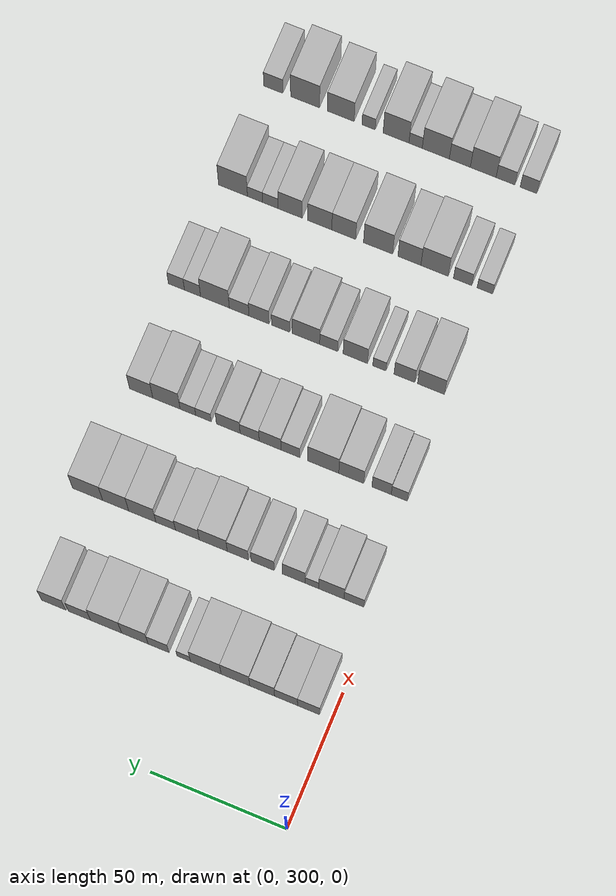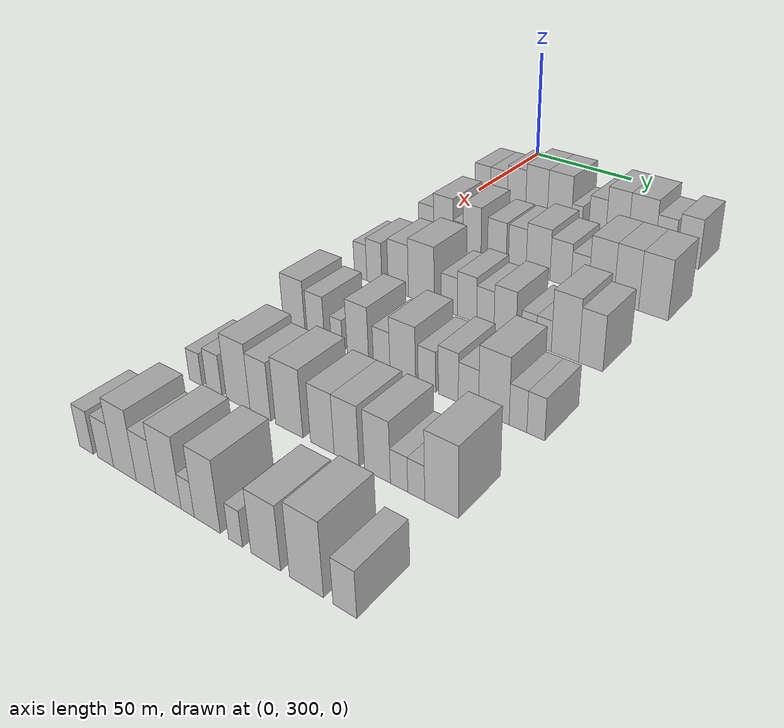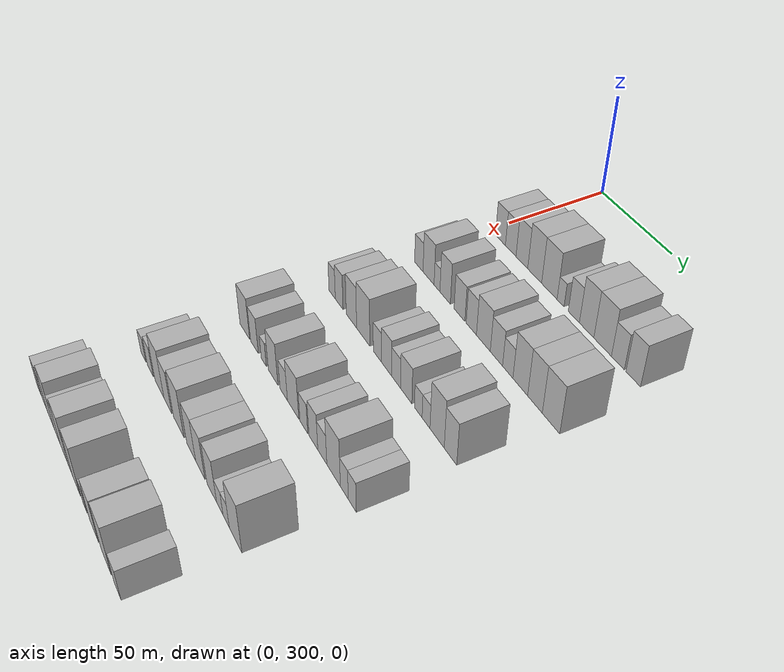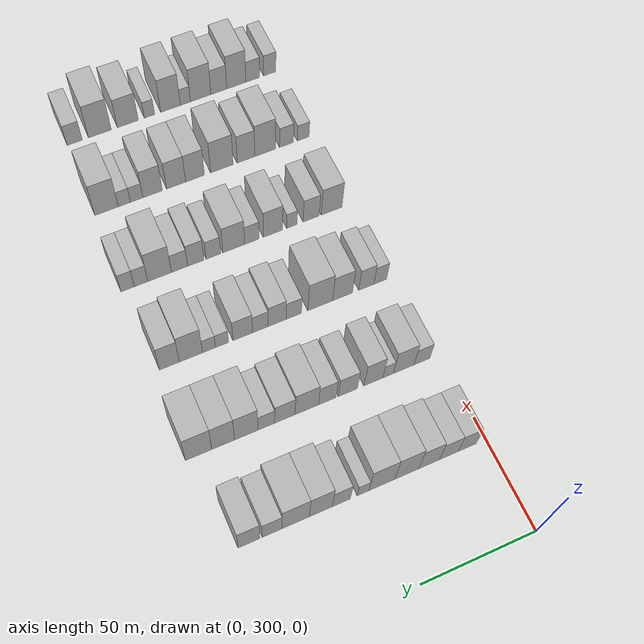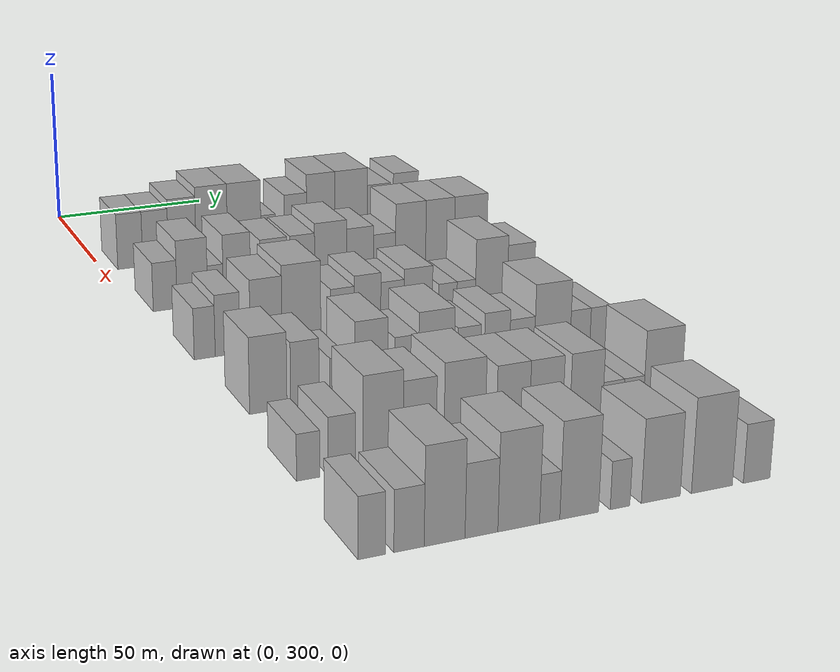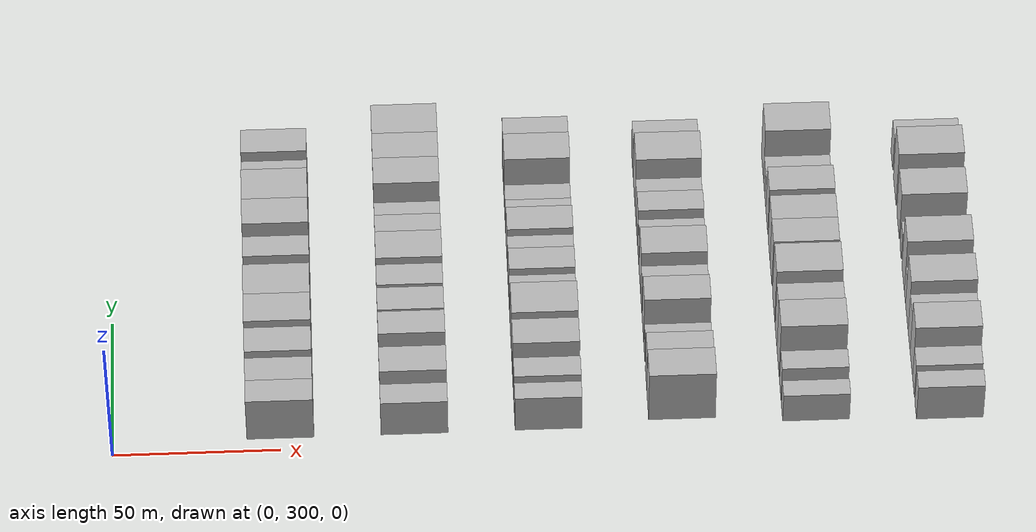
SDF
<sdf version="1.6">
 <world name="default">
  <model name="building_104">
   <static>1</static>
   <pose>50.0000 308.5987 0 0.000000 0.000000 0.000000</pose>
   <link name="link">
    <pose>0 0 9.00 0 0 0</pose>
    <collision name="collision"><geometry><box><size>20.0000 8.1256 18.0000</size></box></geometry></collision>
    <visual name="visual">
     <cast_shadows>0</cast_shadows>
     <geometry><box><size>20.0000 8.1256 18.0000</size></box></geometry>
     <material>
      <script>
       <uri>model://HANNAS_wall/materials/scripts</uri>
       <uri>model://HANNAS_wall/materials/textures</uri>
       <name>vrc/HANNAS_wall</name>
      </script>
     </material>
    </visual>
   </link>
  </model>
  <model name="building_105">
   <static>1</static>
   <pose>50.0000 316.8879 0 0.000000 0.000000 0.000000</pose>
   <link name="link">
    <pose>0 0 9.00 0 0 0</pose>
    <collision name="collision"><geometry><box><size>20.0000 8.4529 18.0000</size></box></geometry></collision>
    <visual name="visual">
     <cast_shadows>0</cast_shadows>
     <geometry><box><size>20.0000 8.4529 18.0000</size></box></geometry>
     <material>
      <script>
       <uri>model://HANNAS_wall/materials/scripts</uri>
       <uri>model://HANNAS_wall/materials/textures</uri>
       <name>vrc/HANNAS_wall</name>
      </script>
     </material>
    </visual>
   </link>
  </model>
  <model name="building_106">
   <static>1</static>
   <pose>50.0000 325.6875 0 0.000000 0.000000 0.000000</pose>
   <link name="link">
    <pose>0 0 10.50 0 0 0</pose>
    <collision name="collision"><geometry><box><size>20.0000 9.1463 21.0000</size></box></geometry></collision>
    <visual name="visual">
     <cast_shadows>0</cast_shadows>
     <geometry><box><size>20.0000 9.1463 21.0000</size></box></geometry>
     <material>
      <script>
       <uri>model://HANNAS_wall/materials/scripts</uri>
       <uri>model://HANNAS_wall/materials/textures</uri>
       <name>vrc/HANNAS_wall</name>
      </script>
     </material>
    </visual>
   </link>
  </model>
  <model name="building_107">
   <static>1</static>
   <pose>50.0000 335.5352 0 0.000000 0.000000 0.000000</pose>
   <link name="link">
    <pose>0 0 12.00 0 0 0</pose>
    <collision name="collision"><geometry><box><size>20.0000 10.5491 24.0000</size></box></geometry></collision>
    <visual name="visual">
     <cast_shadows>0</cast_shadows>
     <geometry><box><size>20.0000 10.5491 24.0000</size></box></geometry>
     <material>
      <script>
       <uri>model://HANNAS_wall/materials/scripts</uri>
       <uri>model://HANNAS_wall/materials/textures</uri>
       <name>vrc/HANNAS_wall</name>
      </script>
     </material>
    </visual>
   </link>
  </model>
  <model name="building_108">
   <static>1</static>
   <pose>50.0000 346.4816 0 0.000000 0.000000 0.000000</pose>
   <link name="link">
    <pose>0 0 12.00 0 0 0</pose>
    <collision name="collision"><geometry><box><size>20.0000 11.3436 24.0000</size></box></geometry></collision>
    <visual name="visual">
     <cast_shadows>0</cast_shadows>
     <geometry><box><size>20.0000 11.3436 24.0000</size></box></geometry>
     <material>
      <script>
       <uri>model://HANNAS_wall/materials/scripts</uri>
       <uri>model://HANNAS_wall/materials/textures</uri>
       <name>vrc/HANNAS_wall</name>
      </script>
     </material>
    </visual>
   </link>
  </model>
  <model name="building_109">
   <static>1</static>
   <pose>50.0000 354.6487 0 0.000000 0.000000 0.000000</pose>
   <link name="link">
    <pose>0 0 6.00 0 0 0</pose>
    <collision name="collision"><geometry><box><size>20.0000 4.9905 12.0000</size></box></geometry></collision>
    <visual name="visual">
     <cast_shadows>0</cast_shadows>
     <geometry><box><size>20.0000 4.9905 12.0000</size></box></geometry>
     <material>
      <script>
       <uri>model://HANNAS_wall/materials/scripts</uri>
       <uri>model://HANNAS_wall/materials/textures</uri>
       <name>vrc/HANNAS_wall</name>
      </script>
     </material>
    </visual>
   </link>
  </model>
  <model name="building_110">
   <static>1</static>
   <pose>50.0000 364.0141 0 0.000000 0.000000 0.000000</pose>
   <link name="link">
    <pose>0 0 9.00 0 0 0</pose>
    <collision name="collision"><geometry><box><size>20.0000 7.7405 18.0000</size></box></geometry></collision>
    <visual name="visual">
     <cast_shadows>0</cast_shadows>
     <geometry><box><size>20.0000 7.7405 18.0000</size></box></geometry>
     <material>
      <script>
       <uri>model://HANNAS_wall/materials/scripts</uri>
       <uri>model://HANNAS_wall/materials/textures</uri>
       <name>vrc/HANNAS_wall</name>
      </script>
     </material>
    </visual>
   </link>
  </model>
  <model name="building_111">
   <static>1</static>
   <pose>50.0000 372.7975 0 0.000000 0.000000 0.000000</pose>
   <link name="link">
    <pose>0 0 12.00 0 0 0</pose>
    <collision name="collision"><geometry><box><size>20.0000 9.8262 24.0000</size></box></geometry></collision>
    <visual name="visual">
     <cast_shadows>0</cast_shadows>
     <geometry><box><size>20.0000 9.8262 24.0000</size></box></geometry>
     <material>
      <script>
       <uri>model://HANNAS_wall/materials/scripts</uri>
       <uri>model://HANNAS_wall/materials/textures</uri>
       <name>vrc/HANNAS_wall</name>
      </script>
     </material>
    </visual>
   </link>
  </model>
  <model name="building_112">
   <static>1</static>
   <pose>50.0000 383.4987 0 0.000000 0.000000 0.000000</pose>
   <link name="link">
    <pose>0 0 12.00 0 0 0</pose>
    <collision name="collision"><geometry><box><size>20.0000 11.5763 24.0000</size></box></geometry></collision>
    <visual name="visual">
     <cast_shadows>0</cast_shadows>
     <geometry><box><size>20.0000 11.5763 24.0000</size></box></geometry>
     <material>
      <script>
       <uri>model://HANNAS_wall/materials/scripts</uri>
       <uri>model://HANNAS_wall/materials/textures</uri>
       <name>vrc/HANNAS_wall</name>
      </script>
     </material>
    </visual>
   </link>
  </model>
  <model name="building_113">
   <static>1</static>
   <pose>50.0000 393.4003 0 0.000000 0.000000 0.000000</pose>
   <link name="link">
    <pose>0 0 9.00 0 0 0</pose>
    <collision name="collision"><geometry><box><size>20.0000 8.2269 18.0000</size></box></geometry></collision>
    <visual name="visual">
     <cast_shadows>0</cast_shadows>
     <geometry><box><size>20.0000 8.2269 18.0000</size></box></geometry>
     <material>
      <script>
       <uri>model://HANNAS_wall/materials/scripts</uri>
       <uri>model://HANNAS_wall/materials/textures</uri>
       <name>vrc/HANNAS_wall</name>
      </script>
     </material>
    </visual>
   </link>
  </model>
  <model name="building_114">
   <static>1</static>
   <pose>50.0000 403.0315 0 0.000000 0.000000 0.000000</pose>
   <link name="link">
    <pose>0 0 10.50 0 0 0</pose>
    <collision name="collision"><geometry><box><size>20.0000 9.0353 21.0000</size></box></geometry></collision>
    <visual name="visual">
     <cast_shadows>0</cast_shadows>
     <geometry><box><size>20.0000 9.0353 21.0000</size></box></geometry>
     <material>
      <script>
       <uri>model://HANNAS_wall/materials/scripts</uri>
       <uri>model://HANNAS_wall/materials/textures</uri>
       <name>vrc/HANNAS_wall</name>
      </script>
     </material>
    </visual>
   </link>
  </model>
  <model name="building_231">
   <static>1</static>
   <pose>90.0000 308.2736 0 0.000000 0.000000 0.000000</pose>
   <link name="link">
    <pose>0 0 7.50 0 0 0</pose>
    <collision name="collision"><geometry><box><size>20.0000 7.3513 15.0000</size></box></geometry></collision>
    <visual name="visual">
     <cast_shadows>0</cast_shadows>
     <geometry><box><size>20.0000 7.3513 15.0000</size></box></geometry>
     <material>
      <script>
       <uri>model://HANNAS_wall/materials/scripts</uri>
       <uri>model://HANNAS_wall/materials/textures</uri>
       <name>vrc/HANNAS_wall</name>
      </script>
     </material>
    </visual>
   </link>
  </model>
  <model name="building_232">
   <static>1</static>
   <pose>90.0000 316.6652 0 0.000000 0.000000 0.000000</pose>
   <link name="link">
    <pose>0 0 10.50 0 0 0</pose>
    <collision name="collision"><geometry><box><size>20.0000 9.4318 21.0000</size></box></geometry></collision>
    <visual name="visual">
     <cast_shadows>0</cast_shadows>
     <geometry><box><size>20.0000 9.4318 21.0000</size></box></geometry>
     <material>
      <script>
       <uri>model://HANNAS_wall/materials/scripts</uri>
       <uri>model://HANNAS_wall/materials/textures</uri>
       <name>vrc/HANNAS_wall</name>
      </script>
     </material>
    </visual>
   </link>
  </model>
  <model name="building_233">
   <static>1</static>
   <pose>90.0000 323.8311 0 0.000000 0.000000 0.000000</pose>
   <link name="link">
    <pose>0 0 6.00 0 0 0</pose>
    <collision name="collision"><geometry><box><size>20.0000 4.8999 12.0000</size></box></geometry></collision>
    <visual name="visual">
     <cast_shadows>0</cast_shadows>
     <geometry><box><size>20.0000 4.8999 12.0000</size></box></geometry>
     <material>
      <script>
       <uri>model://HANNAS_wall/materials/scripts</uri>
       <uri>model://HANNAS_wall/materials/textures</uri>
       <name>vrc/HANNAS_wall</name>
      </script>
     </material>
    </visual>
   </link>
  </model>
  <model name="building_234">
   <static>1</static>
   <pose>90.0000 330.5690 0 0.000000 0.000000 0.000000</pose>
   <link name="link">
    <pose>0 0 10.50 0 0 0</pose>
    <collision name="collision"><geometry><box><size>20.0000 8.5759 21.0000</size></box></geometry></collision>
    <visual name="visual">
     <cast_shadows>0</cast_shadows>
     <geometry><box><size>20.0000 8.5759 21.0000</size></box></geometry>
     <material>
      <script>
       <uri>model://HANNAS_wall/materials/scripts</uri>
       <uri>model://HANNAS_wall/materials/textures</uri>
       <name>vrc/HANNAS_wall</name>
      </script>
     </material>
    </visual>
   </link>
  </model>
  <model name="building_235">
   <static>1</static>
   <pose>90.0000 342.1616 0 0.000000 0.000000 0.000000</pose>
   <link name="link">
    <pose>0 0 9.00 0 0 0</pose>
    <collision name="collision"><geometry><box><size>20.0000 8.6093 18.0000</size></box></geometry></collision>
    <visual name="visual">
     <cast_shadows>0</cast_shadows>
     <geometry><box><size>20.0000 8.6093 18.0000</size></box></geometry>
     <material>
      <script>
       <uri>model://HANNAS_wall/materials/scripts</uri>
       <uri>model://HANNAS_wall/materials/textures</uri>
       <name>vrc/HANNAS_wall</name>
      </script>
     </material>
    </visual>
   </link>
  </model>
  <model name="building_236">
   <static>1</static>
   <pose>90.0000 351.4237 0 0.000000 0.000000 0.000000</pose>
   <link name="link">
    <pose>0 0 9.00 0 0 0</pose>
    <collision name="collision"><geometry><box><size>20.0000 7.9150 18.0000</size></box></geometry></collision>
    <visual name="visual">
     <cast_shadows>0</cast_shadows>
     <geometry><box><size>20.0000 7.9150 18.0000</size></box></geometry>
     <material>
      <script>
       <uri>model://HANNAS_wall/materials/scripts</uri>
       <uri>model://HANNAS_wall/materials/textures</uri>
       <name>vrc/HANNAS_wall</name>
      </script>
     </material>
    </visual>
   </link>
  </model>
  <model name="building_237">
   <static>1</static>
   <pose>90.0000 360.5863 0 0.000000 0.000000 0.000000</pose>
   <link name="link">
    <pose>0 0 10.50 0 0 0</pose>
    <collision name="collision"><geometry><box><size>20.0000 10.4103 21.0000</size></box></geometry></collision>
    <visual name="visual">
     <cast_shadows>0</cast_shadows>
     <geometry><box><size>20.0000 10.4103 21.0000</size></box></geometry>
     <material>
      <script>
       <uri>model://HANNAS_wall/materials/scripts</uri>
       <uri>model://HANNAS_wall/materials/textures</uri>
       <name>vrc/HANNAS_wall</name>
      </script>
     </material>
    </visual>
   </link>
  </model>
  <model name="building_238">
   <static>1</static>
   <pose>90.0000 370.2653 0 0.000000 0.000000 0.000000</pose>
   <link name="link">
    <pose>0 0 9.00 0 0 0</pose>
    <collision name="collision"><geometry><box><size>20.0000 8.9477 18.0000</size></box></geometry></collision>
    <visual name="visual">
     <cast_shadows>0</cast_shadows>
     <geometry><box><size>20.0000 8.9477 18.0000</size></box></geometry>
     <material>
      <script>
       <uri>model://HANNAS_wall/materials/scripts</uri>
       <uri>model://HANNAS_wall/materials/textures</uri>
       <name>vrc/HANNAS_wall</name>
      </script>
     </material>
    </visual>
   </link>
  </model>
  <model name="building_239">
   <static>1</static>
   <pose>90.0000 378.3979 0 0.000000 0.000000 0.000000</pose>
   <link name="link">
    <pose>0 0 7.50 0 0 0</pose>
    <collision name="collision"><geometry><box><size>20.0000 7.3175 15.0000</size></box></geometry></collision>
    <visual name="visual">
     <cast_shadows>0</cast_shadows>
     <geometry><box><size>20.0000 7.3175 15.0000</size></box></geometry>
     <material>
      <script>
       <uri>model://HANNAS_wall/materials/scripts</uri>
       <uri>model://HANNAS_wall/materials/textures</uri>
       <name>vrc/HANNAS_wall</name>
      </script>
     </material>
    </visual>
   </link>
  </model>
  <model name="building_240">
   <static>1</static>
   <pose>90.0000 387.1533 0 0.000000 0.000000 0.000000</pose>
   <link name="link">
    <pose>0 0 12.00 0 0 0</pose>
    <collision name="collision"><geometry><box><size>20.0000 10.1931 24.0000</size></box></geometry></collision>
    <visual name="visual">
     <cast_shadows>0</cast_shadows>
     <geometry><box><size>20.0000 10.1931 24.0000</size></box></geometry>
     <material>
      <script>
       <uri>model://HANNAS_wall/materials/scripts</uri>
       <uri>model://HANNAS_wall/materials/textures</uri>
       <name>vrc/HANNAS_wall</name>
      </script>
     </material>
    </visual>
   </link>
  </model>
  <model name="building_241">
   <static>1</static>
   <pose>90.0000 397.1457 0 0.000000 0.000000 0.000000</pose>
   <link name="link">
    <pose>0 0 12.00 0 0 0</pose>
    <collision name="collision"><geometry><box><size>20.0000 9.7918 24.0000</size></box></geometry></collision>
    <visual name="visual">
     <cast_shadows>0</cast_shadows>
     <geometry><box><size>20.0000 9.7918 24.0000</size></box></geometry>
     <material>
      <script>
       <uri>model://HANNAS_wall/materials/scripts</uri>
       <uri>model://HANNAS_wall/materials/textures</uri>
       <name>vrc/HANNAS_wall</name>
      </script>
     </material>
    </visual>
   </link>
  </model>
  <model name="building_242">
   <static>1</static>
   <pose>90.0000 407.6900 0 0.000000 0.000000 0.000000</pose>
   <link name="link">
    <pose>0 0 12.00 0 0 0</pose>
    <collision name="collision"><geometry><box><size>20.0000 11.2967 24.0000</size></box></geometry></collision>
    <visual name="visual">
     <cast_shadows>0</cast_shadows>
     <geometry><box><size>20.0000 11.2967 24.0000</size></box></geometry>
     <material>
      <script>
       <uri>model://HANNAS_wall/materials/scripts</uri>
       <uri>model://HANNAS_wall/materials/textures</uri>
       <name>vrc/HANNAS_wall</name>
      </script>
     </material>
    </visual>
   </link>
  </model>
  <model name="building_368">
   <static>1</static>
   <pose>130.0000 307.7644 0 0.000000 0.000000 0.000000</pose>
   <link name="link">
    <pose>0 0 7.50 0 0 0</pose>
    <collision name="collision"><geometry><box><size>20.0000 6.0364 15.0000</size></box></geometry></collision>
    <visual name="visual">
     <cast_shadows>0</cast_shadows>
     <geometry><box><size>20.0000 6.0364 15.0000</size></box></geometry>
     <material>
      <script>
       <uri>model://HANNAS_wall/materials/scripts</uri>
       <uri>model://HANNAS_wall/materials/textures</uri>
       <name>vrc/HANNAS_wall</name>
      </script>
     </material>
    </visual>
   </link>
  </model>
  <model name="building_369">
   <static>1</static>
   <pose>130.0000 314.3861 0 0.000000 0.000000 0.000000</pose>
   <link name="link">
    <pose>0 0 9.00 0 0 0</pose>
    <collision name="collision"><geometry><box><size>20.0000 7.2072 18.0000</size></box></geometry></collision>
    <visual name="visual">
     <cast_shadows>0</cast_shadows>
     <geometry><box><size>20.0000 7.2072 18.0000</size></box></geometry>
     <material>
      <script>
       <uri>model://HANNAS_wall/materials/scripts</uri>
       <uri>model://HANNAS_wall/materials/textures</uri>
       <name>vrc/HANNAS_wall</name>
      </script>
     </material>
    </visual>
   </link>
  </model>
  <model name="building_370">
   <static>1</static>
   <pose>130.0000 325.6604 0 0.000000 0.000000 0.000000</pose>
   <link name="link">
    <pose>0 0 10.50 0 0 0</pose>
    <collision name="collision"><geometry><box><size>20.0000 9.3414 21.0000</size></box></geometry></collision>
    <visual name="visual">
     <cast_shadows>0</cast_shadows>
     <geometry><box><size>20.0000 9.3414 21.0000</size></box></geometry>
     <material>
      <script>
       <uri>model://HANNAS_wall/materials/scripts</uri>
       <uri>model://HANNAS_wall/materials/textures</uri>
       <name>vrc/HANNAS_wall</name>
      </script>
     </material>
    </visual>
   </link>
  </model>
  <model name="building_371">
   <static>1</static>
   <pose>130.0000 336.1213 0 0.000000 0.000000 0.000000</pose>
   <link name="link">
    <pose>0 0 12.00 0 0 0</pose>
    <collision name="collision"><geometry><box><size>20.0000 11.5803 24.0000</size></box></geometry></collision>
    <visual name="visual">
     <cast_shadows>0</cast_shadows>
     <geometry><box><size>20.0000 11.5803 24.0000</size></box></geometry>
     <material>
      <script>
       <uri>model://HANNAS_wall/materials/scripts</uri>
       <uri>model://HANNAS_wall/materials/textures</uri>
       <name>vrc/HANNAS_wall</name>
      </script>
     </material>
    </visual>
   </link>
  </model>
  <model name="building_372">
   <static>1</static>
   <pose>130.0000 348.4475 0 0.000000 0.000000 0.000000</pose>
   <link name="link">
    <pose>0 0 7.50 0 0 0</pose>
    <collision name="collision"><geometry><box><size>20.0000 7.0723 15.0000</size></box></geometry></collision>
    <visual name="visual">
     <cast_shadows>0</cast_shadows>
     <geometry><box><size>20.0000 7.0723 15.0000</size></box></geometry>
     <material>
      <script>
       <uri>model://HANNAS_wall/materials/scripts</uri>
       <uri>model://HANNAS_wall/materials/textures</uri>
       <name>vrc/HANNAS_wall</name>
      </script>
     </material>
    </visual>
   </link>
  </model>
  <model name="building_373">
   <static>1</static>
   <pose>130.0000 356.0730 0 0.000000 0.000000 0.000000</pose>
   <link name="link">
    <pose>0 0 9.00 0 0 0</pose>
    <collision name="collision"><geometry><box><size>20.0000 8.1788 18.0000</size></box></geometry></collision>
    <visual name="visual">
     <cast_shadows>0</cast_shadows>
     <geometry><box><size>20.0000 8.1788 18.0000</size></box></geometry>
     <material>
      <script>
       <uri>model://HANNAS_wall/materials/scripts</uri>
       <uri>model://HANNAS_wall/materials/textures</uri>
       <name>vrc/HANNAS_wall</name>
      </script>
     </material>
    </visual>
   </link>
  </model>
  <model name="building_374">
   <static>1</static>
   <pose>130.0000 363.7547 0 0.000000 0.000000 0.000000</pose>
   <link name="link">
    <pose>0 0 7.50 0 0 0</pose>
    <collision name="collision"><geometry><box><size>20.0000 7.1846 15.0000</size></box></geometry></collision>
    <visual name="visual">
     <cast_shadows>0</cast_shadows>
     <geometry><box><size>20.0000 7.1846 15.0000</size></box></geometry>
     <material>
      <script>
       <uri>model://HANNAS_wall/materials/scripts</uri>
       <uri>model://HANNAS_wall/materials/textures</uri>
       <name>vrc/HANNAS_wall</name>
      </script>
     </material>
    </visual>
   </link>
  </model>
  <model name="building_375">
   <static>1</static>
   <pose>130.0000 371.7958 0 0.000000 0.000000 0.000000</pose>
   <link name="link">
    <pose>0 0 9.00 0 0 0</pose>
    <collision name="collision"><geometry><box><size>20.0000 8.8977 18.0000</size></box></geometry></collision>
    <visual name="visual">
     <cast_shadows>0</cast_shadows>
     <geometry><box><size>20.0000 8.8977 18.0000</size></box></geometry>
     <material>
      <script>
       <uri>model://HANNAS_wall/materials/scripts</uri>
       <uri>model://HANNAS_wall/materials/textures</uri>
       <name>vrc/HANNAS_wall</name>
      </script>
     </material>
    </visual>
   </link>
  </model>
  <model name="building_376">
   <static>1</static>
   <pose>130.0000 381.1492 0 0.000000 0.000000 0.000000</pose>
   <link name="link">
    <pose>0 0 6.00 0 0 0</pose>
    <collision name="collision"><geometry><box><size>20.0000 5.8090 12.0000</size></box></geometry></collision>
    <visual name="visual">
     <cast_shadows>0</cast_shadows>
     <geometry><box><size>20.0000 5.8090 12.0000</size></box></geometry>
     <material>
      <script>
       <uri>model://HANNAS_wall/materials/scripts</uri>
       <uri>model://HANNAS_wall/materials/textures</uri>
       <name>vrc/HANNAS_wall</name>
      </script>
     </material>
    </visual>
   </link>
  </model>
  <model name="building_377">
   <static>1</static>
   <pose>130.0000 386.9962 0 0.000000 0.000000 0.000000</pose>
   <link name="link">
    <pose>0 0 6.00 0 0 0</pose>
    <collision name="collision"><geometry><box><size>20.0000 5.8851 12.0000</size></box></geometry></collision>
    <visual name="visual">
     <cast_shadows>0</cast_shadows>
     <geometry><box><size>20.0000 5.8851 12.0000</size></box></geometry>
     <material>
      <script>
       <uri>model://HANNAS_wall/materials/scripts</uri>
       <uri>model://HANNAS_wall/materials/textures</uri>
       <name>vrc/HANNAS_wall</name>
      </script>
     </material>
    </visual>
   </link>
  </model>
  <model name="building_378">
   <static>1</static>
   <pose>130.0000 395.1023 0 0.000000 0.000000 0.000000</pose>
   <link name="link">
    <pose>0 0 12.00 0 0 0</pose>
    <collision name="collision"><geometry><box><size>20.0000 10.3271 24.0000</size></box></geometry></collision>
    <visual name="visual">
     <cast_shadows>0</cast_shadows>
     <geometry><box><size>20.0000 10.3271 24.0000</size></box></geometry>
     <material>
      <script>
       <uri>model://HANNAS_wall/materials/scripts</uri>
       <uri>model://HANNAS_wall/materials/textures</uri>
       <name>vrc/HANNAS_wall</name>
      </script>
     </material>
    </visual>
   </link>
  </model>
  <model name="building_379">
   <static>1</static>
   <pose>130.0000 404.6693 0 0.000000 0.000000 0.000000</pose>
   <link name="link">
    <pose>0 0 10.50 0 0 0</pose>
    <collision name="collision"><geometry><box><size>20.0000 8.8069 21.0000</size></box></geometry></collision>
    <visual name="visual">
     <cast_shadows>0</cast_shadows>
     <geometry><box><size>20.0000 8.8069 21.0000</size></box></geometry>
     <material>
      <script>
       <uri>model://HANNAS_wall/materials/scripts</uri>
       <uri>model://HANNAS_wall/materials/textures</uri>
       <name>vrc/HANNAS_wall</name>
      </script>
     </material>
    </visual>
   </link>
  </model>
  <model name="building_509">
   <static>1</static>
   <pose>170.0000 312.0977 0 0.000000 0.000000 0.000000</pose>
   <link name="link">
    <pose>0 0 10.50 0 0 0</pose>
    <collision name="collision"><geometry><box><size>20.0000 10.1159 21.0000</size></box></geometry></collision>
    <visual name="visual">
     <cast_shadows>0</cast_shadows>
     <geometry><box><size>20.0000 10.1159 21.0000</size></box></geometry>
     <material>
      <script>
       <uri>model://HANNAS_wall/materials/scripts</uri>
       <uri>model://HANNAS_wall/materials/textures</uri>
       <name>vrc/HANNAS_wall</name>
      </script>
     </material>
    </visual>
   </link>
  </model>
  <model name="building_510">
   <static>1</static>
   <pose>170.0000 322.0635 0 0.000000 0.000000 0.000000</pose>
   <link name="link">
    <pose>0 0 9.00 0 0 0</pose>
    <collision name="collision"><geometry><box><size>20.0000 7.8155 18.0000</size></box></geometry></collision>
    <visual name="visual">
     <cast_shadows>0</cast_shadows>
     <geometry><box><size>20.0000 7.8155 18.0000</size></box></geometry>
     <material>
      <script>
       <uri>model://HANNAS_wall/materials/scripts</uri>
       <uri>model://HANNAS_wall/materials/textures</uri>
       <name>vrc/HANNAS_wall</name>
      </script>
     </material>
    </visual>
   </link>
  </model>
  <model name="building_511">
   <static>1</static>
   <pose>170.0000 331.4630 0 0.000000 0.000000 0.000000</pose>
   <link name="link">
    <pose>0 0 6.00 0 0 0</pose>
    <collision name="collision"><geometry><box><size>20.0000 4.9837 12.0000</size></box></geometry></collision>
    <visual name="visual">
     <cast_shadows>0</cast_shadows>
     <geometry><box><size>20.0000 4.9837 12.0000</size></box></geometry>
     <material>
      <script>
       <uri>model://HANNAS_wall/materials/scripts</uri>
       <uri>model://HANNAS_wall/materials/textures</uri>
       <name>vrc/HANNAS_wall</name>
      </script>
     </material>
    </visual>
   </link>
  </model>
  <model name="building_512">
   <static>1</static>
   <pose>170.0000 340.5443 0 0.000000 0.000000 0.000000</pose>
   <link name="link">
    <pose>0 0 10.50 0 0 0</pose>
    <collision name="collision"><geometry><box><size>20.0000 9.1789 21.0000</size></box></geometry></collision>
    <visual name="visual">
     <cast_shadows>0</cast_shadows>
     <geometry><box><size>20.0000 9.1789 21.0000</size></box></geometry>
     <material>
      <script>
       <uri>model://HANNAS_wall/materials/scripts</uri>
       <uri>model://HANNAS_wall/materials/textures</uri>
       <name>vrc/HANNAS_wall</name>
      </script>
     </material>
    </visual>
   </link>
  </model>
  <model name="building_513">
   <static>1</static>
   <pose>170.0000 350.5629 0 0.000000 0.000000 0.000000</pose>
   <link name="link">
    <pose>0 0 7.50 0 0 0</pose>
    <collision name="collision"><geometry><box><size>20.0000 6.8582 15.0000</size></box></geometry></collision>
    <visual name="visual">
     <cast_shadows>0</cast_shadows>
     <geometry><box><size>20.0000 6.8582 15.0000</size></box></geometry>
     <material>
      <script>
       <uri>model://HANNAS_wall/materials/scripts</uri>
       <uri>model://HANNAS_wall/materials/textures</uri>
       <name>vrc/HANNAS_wall</name>
      </script>
     </material>
    </visual>
   </link>
  </model>
  <model name="building_514">
   <static>1</static>
   <pose>170.0000 359.1600 0 0.000000 0.000000 0.000000</pose>
   <link name="link">
    <pose>0 0 10.50 0 0 0</pose>
    <collision name="collision"><geometry><box><size>20.0000 10.3361 21.0000</size></box></geometry></collision>
    <visual name="visual">
     <cast_shadows>0</cast_shadows>
     <geometry><box><size>20.0000 10.3361 21.0000</size></box></geometry>
     <material>
      <script>
       <uri>model://HANNAS_wall/materials/scripts</uri>
       <uri>model://HANNAS_wall/materials/textures</uri>
       <name>vrc/HANNAS_wall</name>
      </script>
     </material>
    </visual>
   </link>
  </model>
  <model name="building_515">
   <static>1</static>
   <pose>170.0000 368.7407 0 0.000000 0.000000 0.000000</pose>
   <link name="link">
    <pose>0 0 7.50 0 0 0</pose>
    <collision name="collision"><geometry><box><size>20.0000 6.8254 15.0000</size></box></geometry></collision>
    <visual name="visual">
     <cast_shadows>0</cast_shadows>
     <geometry><box><size>20.0000 6.8254 15.0000</size></box></geometry>
     <material>
      <script>
       <uri>model://HANNAS_wall/materials/scripts</uri>
       <uri>model://HANNAS_wall/materials/textures</uri>
       <name>vrc/HANNAS_wall</name>
      </script>
     </material>
    </visual>
   </link>
  </model>
  <model name="building_516">
   <static>1</static>
   <pose>170.0000 376.9328 0 0.000000 0.000000 0.000000</pose>
   <link name="link">
    <pose>0 0 9.00 0 0 0</pose>
    <collision name="collision"><geometry><box><size>20.0000 7.5587 18.0000</size></box></geometry></collision>
    <visual name="visual">
     <cast_shadows>0</cast_shadows>
     <geometry><box><size>20.0000 7.5587 18.0000</size></box></geometry>
     <material>
      <script>
       <uri>model://HANNAS_wall/materials/scripts</uri>
       <uri>model://HANNAS_wall/materials/textures</uri>
       <name>vrc/HANNAS_wall</name>
      </script>
     </material>
    </visual>
   </link>
  </model>
  <model name="building_517">
   <static>1</static>
   <pose>170.0000 384.4541 0 0.000000 0.000000 0.000000</pose>
   <link name="link">
    <pose>0 0 7.50 0 0 0</pose>
    <collision name="collision"><geometry><box><size>20.0000 7.4841 15.0000</size></box></geometry></collision>
    <visual name="visual">
     <cast_shadows>0</cast_shadows>
     <geometry><box><size>20.0000 7.4841 15.0000</size></box></geometry>
     <material>
      <script>
       <uri>model://HANNAS_wall/materials/scripts</uri>
       <uri>model://HANNAS_wall/materials/textures</uri>
       <name>vrc/HANNAS_wall</name>
      </script>
     </material>
    </visual>
   </link>
  </model>
  <model name="building_518">
   <static>1</static>
   <pose>170.0000 393.6554 0 0.000000 0.000000 0.000000</pose>
   <link name="link">
    <pose>0 0 12.00 0 0 0</pose>
    <collision name="collision"><geometry><box><size>20.0000 10.9186 24.0000</size></box></geometry></collision>
    <visual name="visual">
     <cast_shadows>0</cast_shadows>
     <geometry><box><size>20.0000 10.9186 24.0000</size></box></geometry>
     <material>
      <script>
       <uri>model://HANNAS_wall/materials/scripts</uri>
       <uri>model://HANNAS_wall/materials/textures</uri>
       <name>vrc/HANNAS_wall</name>
      </script>
     </material>
    </visual>
   </link>
  </model>
  <model name="building_519">
   <static>1</static>
   <pose>170.0000 402.1856 0 0.000000 0.000000 0.000000</pose>
   <link name="link">
    <pose>0 0 7.50 0 0 0</pose>
    <collision name="collision"><geometry><box><size>20.0000 6.1417 15.0000</size></box></geometry></collision>
    <visual name="visual">
     <cast_shadows>0</cast_shadows>
     <geometry><box><size>20.0000 6.1417 15.0000</size></box></geometry>
     <material>
      <script>
       <uri>model://HANNAS_wall/materials/scripts</uri>
       <uri>model://HANNAS_wall/materials/textures</uri>
       <name>vrc/HANNAS_wall</name>
      </script>
     </material>
    </visual>
   </link>
  </model>
  <model name="building_520">
   <static>1</static>
   <pose>170.0000 408.3156 0 0.000000 0.000000 0.000000</pose>
   <link name="link">
    <pose>0 0 7.50 0 0 0</pose>
    <collision name="collision"><geometry><box><size>20.0000 6.1183 15.0000</size></box></geometry></collision>
    <visual name="visual">
     <cast_shadows>0</cast_shadows>
     <geometry><box><size>20.0000 6.1183 15.0000</size></box></geometry>
     <material>
      <script>
       <uri>model://HANNAS_wall/materials/scripts</uri>
       <uri>model://HANNAS_wall/materials/textures</uri>
       <name>vrc/HANNAS_wall</name>
      </script>
     </material>
    </visual>
   </link>
  </model>
  <model name="building_652">
   <static>1</static>
   <pose>210.0000 307.8315 0 0.000000 0.000000 0.000000</pose>
   <link name="link">
    <pose>0 0 6.00 0 0 0</pose>
    <collision name="collision"><geometry><box><size>20.0000 5.8720 12.0000</size></box></geometry></collision>
    <visual name="visual">
     <cast_shadows>0</cast_shadows>
     <geometry><box><size>20.0000 5.8720 12.0000</size></box></geometry>
     <material>
      <script>
       <uri>model://HANNAS_wall/materials/scripts</uri>
       <uri>model://HANNAS_wall/materials/textures</uri>
       <name>vrc/HANNAS_wall</name>
      </script>
     </material>
    </visual>
   </link>
  </model>
  <model name="building_653">
   <static>1</static>
   <pose>210.0000 316.2389 0 0.000000 0.000000 0.000000</pose>
   <link name="link">
    <pose>0 0 7.50 0 0 0</pose>
    <collision name="collision"><geometry><box><size>20.0000 6.9427 15.0000</size></box></geometry></collision>
    <visual name="visual">
     <cast_shadows>0</cast_shadows>
     <geometry><box><size>20.0000 6.9427 15.0000</size></box></geometry>
     <material>
      <script>
       <uri>model://HANNAS_wall/materials/scripts</uri>
       <uri>model://HANNAS_wall/materials/textures</uri>
       <name>vrc/HANNAS_wall</name>
      </script>
     </material>
    </visual>
   </link>
  </model>
  <model name="building_654">
   <static>1</static>
   <pose>210.0000 326.8701 0 0.000000 0.000000 0.000000</pose>
   <link name="link">
    <pose>0 0 12.00 0 0 0</pose>
    <collision name="collision"><geometry><box><size>20.0000 10.3197 24.0000</size></box></geometry></collision>
    <visual name="visual">
     <cast_shadows>0</cast_shadows>
     <geometry><box><size>20.0000 10.3197 24.0000</size></box></geometry>
     <material>
      <script>
       <uri>model://HANNAS_wall/materials/scripts</uri>
       <uri>model://HANNAS_wall/materials/textures</uri>
       <name>vrc/HANNAS_wall</name>
      </script>
     </material>
    </visual>
   </link>
  </model>
  <model name="building_655">
   <static>1</static>
   <pose>210.0000 336.3884 0 0.000000 0.000000 0.000000</pose>
   <link name="link">
    <pose>0 0 10.50 0 0 0</pose>
    <collision name="collision"><geometry><box><size>20.0000 8.7168 21.0000</size></box></geometry></collision>
    <visual name="visual">
     <cast_shadows>0</cast_shadows>
     <geometry><box><size>20.0000 8.7168 21.0000</size></box></geometry>
     <material>
      <script>
       <uri>model://HANNAS_wall/materials/scripts</uri>
       <uri>model://HANNAS_wall/materials/textures</uri>
       <name>vrc/HANNAS_wall</name>
      </script>
     </material>
    </visual>
   </link>
  </model>
  <model name="building_656">
   <static>1</static>
   <pose>210.0000 348.2683 0 0.000000 0.000000 0.000000</pose>
   <link name="link">
    <pose>0 0 12.00 0 0 0</pose>
    <collision name="collision"><geometry><box><size>20.0000 11.0431 24.0000</size></box></geometry></collision>
    <visual name="visual">
     <cast_shadows>0</cast_shadows>
     <geometry><box><size>20.0000 11.0431 24.0000</size></box></geometry>
     <material>
      <script>
       <uri>model://HANNAS_wall/materials/scripts</uri>
       <uri>model://HANNAS_wall/materials/textures</uri>
       <name>vrc/HANNAS_wall</name>
      </script>
     </material>
    </visual>
   </link>
  </model>
  <model name="building_657">
   <static>1</static>
   <pose>210.0000 361.3276 0 0.000000 0.000000 0.000000</pose>
   <link name="link">
    <pose>0 0 10.50 0 0 0</pose>
    <collision name="collision"><geometry><box><size>20.0000 9.0754 21.0000</size></box></geometry></collision>
    <visual name="visual">
     <cast_shadows>0</cast_shadows>
     <geometry><box><size>20.0000 9.0754 21.0000</size></box></geometry>
     <material>
      <script>
       <uri>model://HANNAS_wall/materials/scripts</uri>
       <uri>model://HANNAS_wall/materials/textures</uri>
       <name>vrc/HANNAS_wall</name>
      </script>
     </material>
    </visual>
   </link>
  </model>
  <model name="building_658">
   <static>1</static>
   <pose>210.0000 370.4841 0 0.000000 0.000000 0.000000</pose>
   <link name="link">
    <pose>0 0 10.50 0 0 0</pose>
    <collision name="collision"><geometry><box><size>20.0000 9.2375 21.0000</size></box></geometry></collision>
    <visual name="visual">
     <cast_shadows>0</cast_shadows>
     <geometry><box><size>20.0000 9.2375 21.0000</size></box></geometry>
     <material>
      <script>
       <uri>model://HANNAS_wall/materials/scripts</uri>
       <uri>model://HANNAS_wall/materials/textures</uri>
       <name>vrc/HANNAS_wall</name>
      </script>
     </material>
    </visual>
   </link>
  </model>
  <model name="building_659">
   <static>1</static>
   <pose>210.0000 381.7198 0 0.000000 0.000000 0.000000</pose>
   <link name="link">
    <pose>0 0 10.50 0 0 0</pose>
    <collision name="collision"><geometry><box><size>20.0000 9.2339 21.0000</size></box></geometry></collision>
    <visual name="visual">
     <cast_shadows>0</cast_shadows>
     <geometry><box><size>20.0000 9.2339 21.0000</size></box></geometry>
     <material>
      <script>
       <uri>model://HANNAS_wall/materials/scripts</uri>
       <uri>model://HANNAS_wall/materials/textures</uri>
       <name>vrc/HANNAS_wall</name>
      </script>
     </material>
    </visual>
   </link>
  </model>
  <model name="building_660">
   <static>1</static>
   <pose>210.0000 389.3147 0 0.000000 0.000000 0.000000</pose>
   <link name="link">
    <pose>0 0 6.00 0 0 0</pose>
    <collision name="collision"><geometry><box><size>20.0000 5.9561 12.0000</size></box></geometry></collision>
    <visual name="visual">
     <cast_shadows>0</cast_shadows>
     <geometry><box><size>20.0000 5.9561 12.0000</size></box></geometry>
     <material>
      <script>
       <uri>model://HANNAS_wall/materials/scripts</uri>
       <uri>model://HANNAS_wall/materials/textures</uri>
       <name>vrc/HANNAS_wall</name>
      </script>
     </material>
    </visual>
   </link>
  </model>
  <model name="building_661">
   <static>1</static>
   <pose>210.0000 395.1739 0 0.000000 0.000000 0.000000</pose>
   <link name="link">
    <pose>0 0 6.00 0 0 0</pose>
    <collision name="collision"><geometry><box><size>20.0000 5.7622 12.0000</size></box></geometry></collision>
    <visual name="visual">
     <cast_shadows>0</cast_shadows>
     <geometry><box><size>20.0000 5.7622 12.0000</size></box></geometry>
     <material>
      <script>
       <uri>model://HANNAS_wall/materials/scripts</uri>
       <uri>model://HANNAS_wall/materials/textures</uri>
       <name>vrc/HANNAS_wall</name>
      </script>
     </material>
    </visual>
   </link>
  </model>
  <model name="building_662">
   <static>1</static>
   <pose>210.0000 403.5807 0 0.000000 0.000000 0.000000</pose>
   <link name="link">
    <pose>0 0 12.00 0 0 0</pose>
    <collision name="collision"><geometry><box><size>20.0000 11.0515 24.0000</size></box></geometry></collision>
    <visual name="visual">
     <cast_shadows>0</cast_shadows>
     <geometry><box><size>20.0000 11.0515 24.0000</size></box></geometry>
     <material>
      <script>
       <uri>model://HANNAS_wall/materials/scripts</uri>
       <uri>model://HANNAS_wall/materials/textures</uri>
       <name>vrc/HANNAS_wall</name>
      </script>
     </material>
    </visual>
   </link>
  </model>
  <model name="building_796">
   <static>1</static>
   <pose>250.0000 307.2063 0 0.000000 0.000000 0.000000</pose>
   <link name="link">
    <pose>0 0 7.50 0 0 0</pose>
    <collision name="collision"><geometry><box><size>20.0000 6.3342 15.0000</size></box></geometry></collision>
    <visual name="visual">
     <cast_shadows>0</cast_shadows>
     <geometry><box><size>20.0000 6.3342 15.0000</size></box></geometry>
     <material>
      <script>
       <uri>model://HANNAS_wall/materials/scripts</uri>
       <uri>model://HANNAS_wall/materials/textures</uri>
       <name>vrc/HANNAS_wall</name>
      </script>
     </material>
    </visual>
   </link>
  </model>
  <model name="building_797">
   <static>1</static>
   <pose>250.0000 315.9493 0 0.000000 0.000000 0.000000</pose>
   <link name="link">
    <pose>0 0 7.50 0 0 0</pose>
    <collision name="collision"><geometry><box><size>20.0000 7.1517 15.0000</size></box></geometry></collision>
    <visual name="visual">
     <cast_shadows>0</cast_shadows>
     <geometry><box><size>20.0000 7.1517 15.0000</size></box></geometry>
     <material>
      <script>
       <uri>model://HANNAS_wall/materials/scripts</uri>
       <uri>model://HANNAS_wall/materials/textures</uri>
       <name>vrc/HANNAS_wall</name>
      </script>
     </material>
    </visual>
   </link>
  </model>
  <model name="building_798">
   <static>1</static>
   <pose>250.0000 324.4256 0 0.000000 0.000000 0.000000</pose>
   <link name="link">
    <pose>0 0 12.00 0 0 0</pose>
    <collision name="collision"><geometry><box><size>20.0000 9.8009 24.0000</size></box></geometry></collision>
    <visual name="visual">
     <cast_shadows>0</cast_shadows>
     <geometry><box><size>20.0000 9.8009 24.0000</size></box></geometry>
     <material>
      <script>
       <uri>model://HANNAS_wall/materials/scripts</uri>
       <uri>model://HANNAS_wall/materials/textures</uri>
       <name>vrc/HANNAS_wall</name>
      </script>
     </material>
    </visual>
   </link>
  </model>
  <model name="building_799">
   <static>1</static>
   <pose>250.0000 333.3277 0 0.000000 0.000000 0.000000</pose>
   <link name="link">
    <pose>0 0 9.00 0 0 0</pose>
    <collision name="collision"><geometry><box><size>20.0000 8.0034 18.0000</size></box></geometry></collision>
    <visual name="visual">
     <cast_shadows>0</cast_shadows>
     <geometry><box><size>20.0000 8.0034 18.0000</size></box></geometry>
     <material>
      <script>
       <uri>model://HANNAS_wall/materials/scripts</uri>
       <uri>model://HANNAS_wall/materials/textures</uri>
       <name>vrc/HANNAS_wall</name>
      </script>
     </material>
    </visual>
   </link>
  </model>
  <model name="building_800">
   <static>1</static>
   <pose>250.0000 342.5036 0 0.000000 0.000000 0.000000</pose>
   <link name="link">
    <pose>0 0 12.00 0 0 0</pose>
    <collision name="collision"><geometry><box><size>20.0000 10.3483 24.0000</size></box></geometry></collision>
    <visual name="visual">
     <cast_shadows>0</cast_shadows>
     <geometry><box><size>20.0000 10.3483 24.0000</size></box></geometry>
     <material>
      <script>
       <uri>model://HANNAS_wall/materials/scripts</uri>
       <uri>model://HANNAS_wall/materials/textures</uri>
       <name>vrc/HANNAS_wall</name>
      </script>
     </material>
    </visual>
   </link>
  </model>
  <model name="building_801">
   <static>1</static>
   <pose>250.0000 350.2209 0 0.000000 0.000000 0.000000</pose>
   <link name="link">
    <pose>0 0 6.00 0 0 0</pose>
    <collision name="collision"><geometry><box><size>20.0000 5.0863 12.0000</size></box></geometry></collision>
    <visual name="visual">
     <cast_shadows>0</cast_shadows>
     <geometry><box><size>20.0000 5.0863 12.0000</size></box></geometry>
     <material>
      <script>
       <uri>model://HANNAS_wall/materials/scripts</uri>
       <uri>model://HANNAS_wall/materials/textures</uri>
       <name>vrc/HANNAS_wall</name>
      </script>
     </material>
    </visual>
   </link>
  </model>
  <model name="building_802">
   <static>1</static>
   <pose>250.0000 357.7040 0 0.000000 0.000000 0.000000</pose>
   <link name="link">
    <pose>0 0 12.00 0 0 0</pose>
    <collision name="collision"><geometry><box><size>20.0000 9.8800 24.0000</size></box></geometry></collision>
    <visual name="visual">
     <cast_shadows>0</cast_shadows>
     <geometry><box><size>20.0000 9.8800 24.0000</size></box></geometry>
     <material>
      <script>
       <uri>model://HANNAS_wall/materials/scripts</uri>
       <uri>model://HANNAS_wall/materials/textures</uri>
       <name>vrc/HANNAS_wall</name>
      </script>
     </material>
    </visual>
   </link>
  </model>
  <model name="building_803">
   <static>1</static>
   <pose>250.0000 368.1965 0 0.000000 0.000000 0.000000</pose>
   <link name="link">
    <pose>0 0 6.00 0 0 0</pose>
    <collision name="collision"><geometry><box><size>20.0000 5.1050 12.0000</size></box></geometry></collision>
    <visual name="visual">
     <cast_shadows>0</cast_shadows>
     <geometry><box><size>20.0000 5.1050 12.0000</size></box></geometry>
     <material>
      <script>
       <uri>model://HANNAS_wall/materials/scripts</uri>
       <uri>model://HANNAS_wall/materials/textures</uri>
       <name>vrc/HANNAS_wall</name>
      </script>
     </material>
    </visual>
   </link>
  </model>
  <model name="building_804">
   <static>1</static>
   <pose>250.0000 378.8928 0 0.000000 0.000000 0.000000</pose>
   <link name="link">
    <pose>0 0 10.50 0 0 0</pose>
    <collision name="collision"><geometry><box><size>20.0000 10.2876 21.0000</size></box></geometry></collision>
    <visual name="visual">
     <cast_shadows>0</cast_shadows>
     <geometry><box><size>20.0000 10.2876 21.0000</size></box></geometry>
     <material>
      <script>
       <uri>model://HANNAS_wall/materials/scripts</uri>
       <uri>model://HANNAS_wall/materials/textures</uri>
       <name>vrc/HANNAS_wall</name>
      </script>
     </material>
    </visual>
   </link>
  </model>
  <model name="building_805">
   <static>1</static>
   <pose>250.0000 392.5868 0 0.000000 0.000000 0.000000</pose>
   <link name="link">
    <pose>0 0 12.00 0 0 0</pose>
    <collision name="collision"><geometry><box><size>20.0000 11.1004 24.0000</size></box></geometry></collision>
    <visual name="visual">
     <cast_shadows>0</cast_shadows>
     <geometry><box><size>20.0000 11.1004 24.0000</size></box></geometry>
     <material>
      <script>
       <uri>model://HANNAS_wall/materials/scripts</uri>
       <uri>model://HANNAS_wall/materials/textures</uri>
       <name>vrc/HANNAS_wall</name>
      </script>
     </material>
    </visual>
   </link>
  </model>
  <model name="building_806">
   <static>1</static>
   <pose>250.0000 404.8181 0 0.000000 0.000000 0.000000</pose>
   <link name="link">
    <pose>0 0 7.50 0 0 0</pose>
    <collision name="collision"><geometry><box><size>20.0000 7.3622 15.0000</size></box></geometry></collision>
    <visual name="visual">
     <cast_shadows>0</cast_shadows>
     <geometry><box><size>20.0000 7.3622 15.0000</size></box></geometry>
     <material>
      <script>
       <uri>model://HANNAS_wall/materials/scripts</uri>
       <uri>model://HANNAS_wall/materials/textures</uri>
       <name>vrc/HANNAS_wall</name>
      </script>
     </material>
    </visual>
   </link>
  </model>
 </world>
</sdf>
